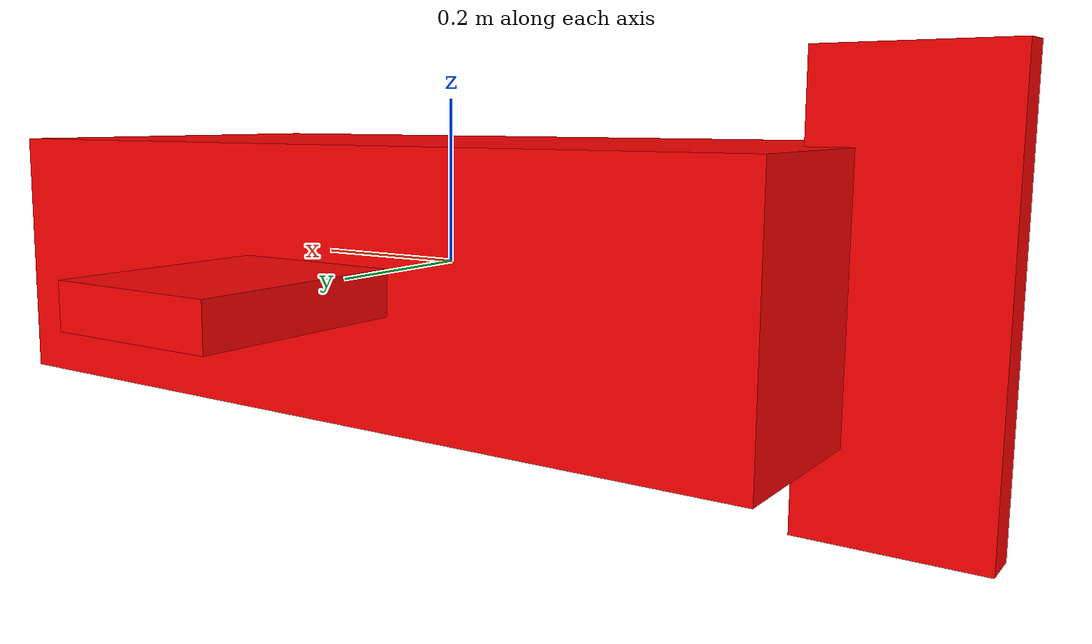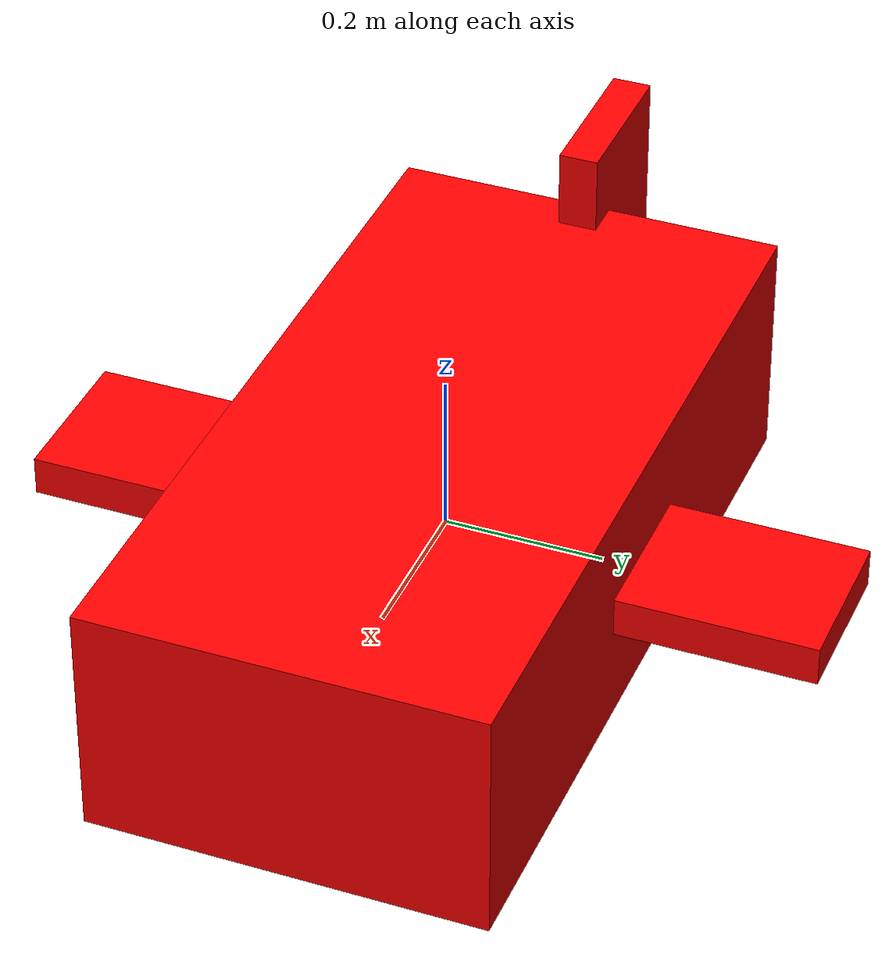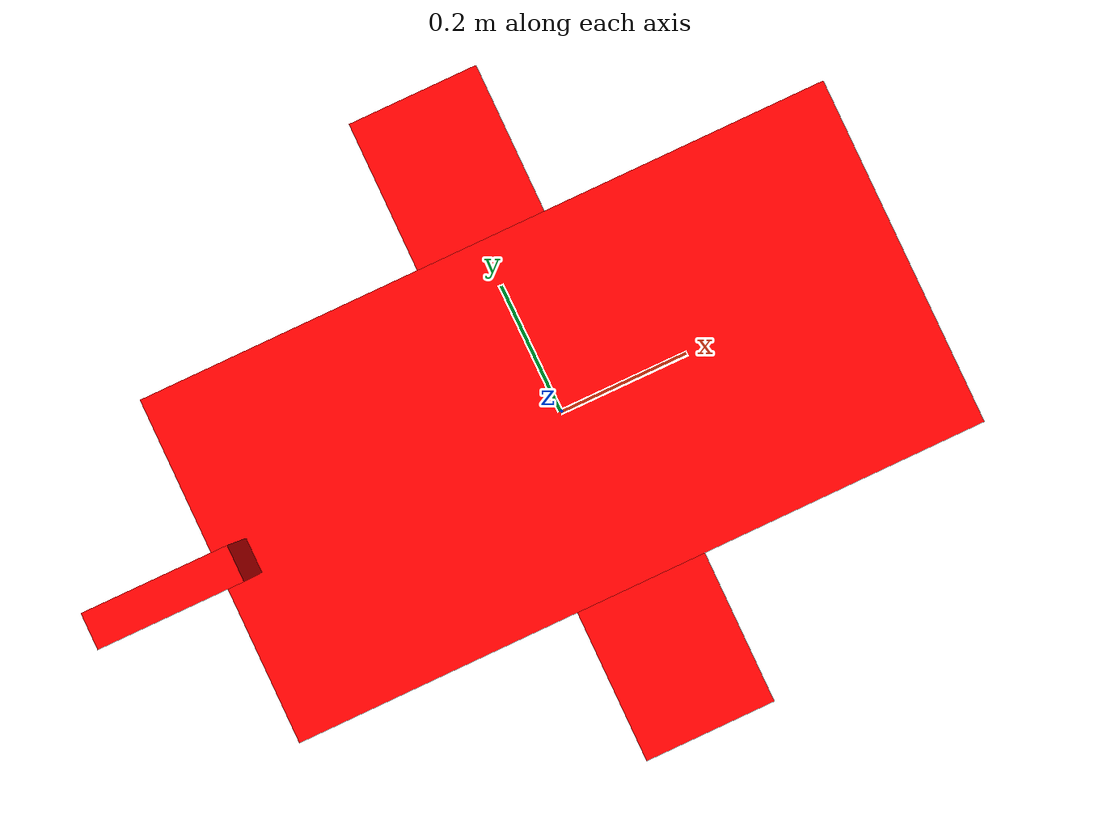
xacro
<?xml version="1.0"?>
<robot name="fish_hpurv">

    <material name="red">
        <color rgba="1.0 0.0 0.0 1.0"/>
    </material>

    <!-- Fish Body Definition -->
    <link name="body">
        <visual>
            <geometry>
                <box size="1.0 0.5 0.3"/>
            </geometry>
            <origin rpy="0.0 0.0 0.0" xyz="0.0 0.0 0.0"/>
            <material name="red"/>
        </visual>
        <collision>
            <geometry>
                <box size="1.0 0.5 0.3"/>
            </geometry>
            <origin rpy="0.0 0.0 0.0" xyz="0.0 0.0 0.0"/>
        </collision>
        <inertial>
            <origin rpy="0.0 0.0 0.0" xyz="0.0 0.0 0.0"/>
            <mass value="150.0"/> <!-- Volume 0.15m³ * Density 1000 kg/m³ -->
            <inertia ixx="1.88" ixy="0.0" ixz="0.0"
                     iyy="6.25" iyz="0.0" izz="6.25"/>
        </inertial>
    </link>

    <!-- Left Fin Definition -->
    <link name="fin_left">
        <visual>
            <geometry>
                <box size="0.5 0.05 0.2"/>
            </geometry>
            <origin rpy="0.0 0.0 0.0" xyz="0.0 0.0 0.0"/>
            <material name="red"/>
        </visual>
        <collision>
            <geometry>
                <box size="0.5 0.05 0.2"/>
            </geometry>
            <origin rpy="0.0 0.0 0.0" xyz="0.0 0.0 0.0"/>
        </collision>
        <inertial>
            <mass value="5.0"/> <!-- Volume 0.005m³ * Density 1000 kg/m³ -->
            <inertia ixx="0.002" ixy="0.0" ixz="0.0"
                     iyy="0.021" iyz="0.0" izz="0.013"/>
        </inertial>
    </link>

    <!-- Right Fin Definition -->
    <link name="fin_right">
        <visual>
            <geometry>
                <box size="0.5 0.05 0.2"/>
            </geometry>
            <origin rpy="0.0 0.0 0.0" xyz="0.0 -0.0 0.0"/>
            <material name="red"/>
        </visual>
        <collision>
            <geometry>
                <box size="0.5 0.05 0.2"/>
            </geometry>
            <origin rpy="0.0 0.0 0.0" xyz="0.0 -0.0 0.0"/>
        </collision>
        <inertial>
            <mass value="5.0"/>
            <inertia ixx="0.002" ixy="0.0" ixz="0.0"
                     iyy="0.021" iyz="0.0" izz="0.013"/>
        </inertial>
    </link>

    <!-- Caudal (Tail) Fin Definition -->
    <link name="caudal_fin">
        <visual>
            <geometry>
                <box size="0.5 0.05 0.2"/>
            </geometry>
            <origin rpy="0.0 0.0 0.0" xyz="-0.0 0.0 0.0"/>
            <material name="red"/>
        </visual>
        <collision>
            <geometry>
                <box size="0.5 0.05 0.2"/>
            </geometry>
            <origin rpy="0.0 0.0 0.0" xyz="-0.0 0.0 0.0"/>
        </collision>
        <inertial>
            <mass value="6.0"/> <!-- Volume 0.005m³ * Density 1200 kg/m³ -->
            <inertia ixx="0.002" ixy="0.0" ixz="0.0"
                     iyy="0.021" iyz="0.0" izz="0.013"/>
        </inertial>
    </link>

    <!-- Joints -->
    <joint name="left_fin_joint" type="revolute">
        <parent link="body"/>
        <child link="fin_left"/>
        <origin rpy="1.57 0 1.57" xyz="0.0 0.25 0.0"/>
        <axis xyz="1 0 0"/>
        <limit effort="10.0" lower="-1.57" upper="1.57" velocity="1.0"/>
    </joint>

    <joint name="right_fin_joint" type="revolute">
        <parent link="body"/>
        <child link="fin_right"/>
        <origin rpy="1.57 0 1.57" xyz="0.0 -0.25 0.0"/>
        <axis xyz="1 0 0"/>
        <limit effort="10.0" lower="-1.57" upper="1.57" velocity="1.0"/>
    </joint>

    <joint name="caudal_fin_joint" type="revolute">
        <parent link="body"/>
        <child link="caudal_fin"/>
        <origin rpy="0 1.57 3.14" xyz="-0.55 0.0 0.0"/>
        <axis xyz="0 0 1"/>
        <limit effort="10.0" lower="-1.57" upper="1.57" velocity="1.0"/>
    </joint>

    <!-- Gazebo Settings -->
    <gazebo reference="body">
        <mu1>0.1</mu1>
        <mu2>0.1</mu2>
    </gazebo>

    <gazebo>
        <plugin name="buoyancy_sphere" filename="libBuoyancyPlugin.so">
            <link_name>body</link_name>
            <origin xyz="0 0 0"/>  <!-- Lifted for stability -->
            <radius>0.34</radius>
            <fluid_density>1000</fluid_density>
        </plugin>
    </gazebo>

</robot>
